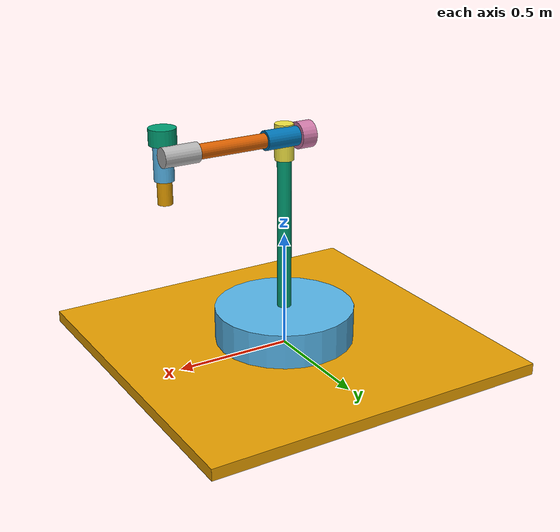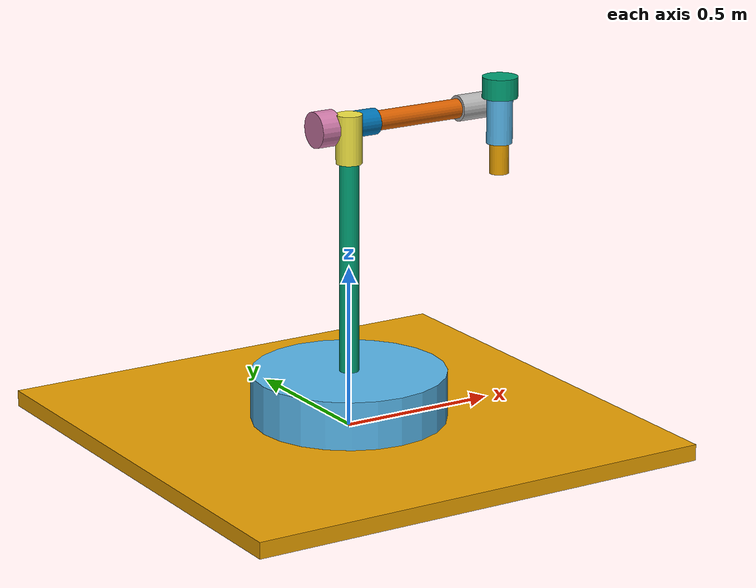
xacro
<?xml version="1.0" ?>
<robot name="robot" xmlns:xacro="http://www.ros.org/wiki/xacro">
<xacro:include filename="$(find robotic_arm)/urdf/materials.xacro" />
<!-- ### XACROS ### -->
<!-- universal -->
<xacro:property name = "default_origin">
    <origin rpy="0 0 0" xyz="0 0 0"/>
</xacro:property>

<!-- arm parts -->
<xacro:macro name = "cylinder_macro" params = "link_name collision_name mass length radius xyz rpy">
<link name = "${link_name}">

    <inertial>
      <mass value="${mass}"/>
      <cylinder_inertia m="${mass}" r="${radius}" h="{length}"/>
      <origin rpy="${rpy}" xyz="${xyz}"/>
      <inertia ixx="${mass * (3 * (radius ** 2) + length ** 2) / 12}" ixy="0" ixz="0" iyy="${mass * (3 * (radius ** 2) + length ** 2) / 12}" iyz="0" izz="${mass * (radius ** 2) / 2}"/>
    </inertial>

    <collision name = "${collision_name}">
    <origin rpy="${rpy}" xyz="${xyz}"/>
      <geometry>
        <cylinder length="${length}" radius="${radius}"/>
      </geometry>
    </collision>

    <visual>
      <origin rpy="${rpy}" xyz="${xyz}"/>
      <geometry>
        <cylinder length="${length}" radius="${radius}"/>
      </geometry>
    </visual>
 </link>
</xacro:macro>

<!-- fixed joint -->
<xacro:macro name = "fixed_joint" params = "joint_name joint_type child_link parent_link xyz xyz_axes " >
<joint name="${joint_name}" type="${joint_type}">
    <origin rpy="0 0 0" xyz="${xyz}"/>
    <child link="${child_link}"/>
    <parent link="${parent_link}"/>
    <axis rpy="0 0 0" xyz="${xyz_axes}"/>
    <limit effort="100" velocity="0" />
</joint>
</xacro:macro>

<!-- revolute + prismatic -->
<xacro:macro name = "movable_joint" params = "joint_name joint_type child_link parent_link xyz xyz_axes l u" >
<joint name="${joint_name}" type="${joint_type}">
    <origin rpy="0 0 0" xyz="${xyz}"/>
    <child link="${child_link}"/>
    <parent link="${parent_link}"/>
    <axis rpy="0 0 0" xyz="${xyz_axes}"/>
    <limit effort="100" velocity="0.5" lower="${l}" upper="${u}"/>
</joint>
</xacro:macro>

<!-- platform -->
<xacro:property name="mass_platform" value="5"/>
<xacro:property name="length_platform" value="1.5"/>
<xacro:property name="width_platform" value="1.5"/>
<xacro:property name="height_platform" value="0.05"/>
<xacro:property name="ixx_platform" value="${mass_platform * (length_platform ** 2 + height_platform ** 2) / 12}"/>
<xacro:property name="iyy_platform" value="${mass_platform * (height_platform ** 2 + width_platform ** 2) / 12}"/>
<xacro:property name="izz_platform" value="${mass_platform * (length_platform ** 2 + width_platform ** 2) / 12}"/>

<!-- ### END OF XACROS ### -->
<!-- PLATFORM -->
<link name = "platform">
    <pose> 0 0 0 0 0 0 </pose>

    <inertial>
        <mass value="${mass_platform}"/>
        <xacro:insert_block name = "default_origin"/>
        <inertia ixx="${ixx_platform}" ixy="0" ixz="0" iyy="${iyy_platform}" iyz="0" izz="${izz_platform}"/>
    </inertial>

    <collision name="platform_collision">
        <xacro:insert_block name = "default_origin"/>
        <geometry>
            <box size="${length_platform} ${width_platform} ${height_platform}"/>
        </geometry>
    </collision>

    <visual>
        <xacro:insert_block name = "default_origin"/>
        <geometry>
            <box size="${length_platform} ${width_platform} ${height_platform}"/>
        </geometry>
    </visual>

</link>

<!-- BASE -->
<xacro:cylinder_macro link_name = "base"
                      collision_name = "base_collision"
                      mass = "3"
                      length = "0.15"
                      radius = "0.3"
                      rpy = "0 0 0"
                      xyz = "0 0 0.05"/>

<!-- PART 1 -->
<xacro:cylinder_macro link_name = "part1"
                      collision_name = "part1_collision"
                      mass = "2"
                      length = "0.8"
                      radius = "0.03"
                      rpy = "0 0 0"
                      xyz = "0 0 0.32"/>

<!-- CYLINDER_LINK1 -->
<xacro:cylinder_macro link_name = "cylinder_link1"
                      collision_name = "cylinder_link1_collision"
                      mass = "0.5"
                      length = "0.15"
                      radius = "0.04"
                      rpy = "0 0 0"
                      xyz = "0 0 0"/>

<!-- CYLINDER_LINK2 -->
<xacro:cylinder_macro link_name = "cylinder_link2"
                      collision_name = "cylinder_link2_collision"
                      mass = "0.5"
                      length = "0.15"
                      radius = "0.04"
                      rpy = "0 1.5708 0"
                      xyz = "0 0 0"/>

<!-- PART 2 -->
<xacro:cylinder_macro link_name = "part2"
                      collision_name = "part2_collision"
                      mass = "1.5"
                      length = "0.5"
                      radius = "0.03"
                      rpy = "0 1.5708 0"
                      xyz = "0 0 0"/>

<!-- CYLINDER_LINK3 -->
<xacro:cylinder_macro link_name = "cylinder_link3"
                      collision_name = "cylinder_link3_collision"
                      mass = "0.5"
                      length = "0.065"
                      radius = "0.055"
                      rpy = "0 1.5708 0"
                      xyz = "0 0 0"/>
<!-- CYLINDER_LINK4 -->
<xacro:cylinder_macro link_name = "cylinder_link4"
                      collision_name = "cylinder_link4_collision"
                      mass = "0.01"
                      length = "0.15"
                      radius = "0.04"
                      rpy = "0 1.5708 0"
                      xyz = "0 0 0"/>

<!-- PART 3 -->
<xacro:cylinder_macro link_name = "part3"
                      collision_name = "part3_collision"
                      mass = "0.2"
                      length = "0.3"
                      radius = "0.03"
                      rpy = "0 3.14 0"
                      xyz = "0 0 0"/>
<!-- CYLINDER_LINK5 -->
<xacro:cylinder_macro link_name = "cylinder_link5"
                      collision_name = "cylinder_link5_collision"
                      mass = "0.01"
                      length = "0.15"
                      radius = "0.04"
                      rpy = "0 0 0"
                      xyz = "0 0 0"/>

<!-- CYLINDER_LINK6 -->
<xacro:cylinder_macro link_name = "cylinder_link6"
                      collision_name = "cylinder_link6_collision"
                      mass = "0.01"
                      length = "0.065"
                      radius = "0.055"
                      rpy = "0 0 0"
                      xyz = "0 0 0"/>

<!-- #### JOINTS #### -->
<!-- Base to platform -->
<xacro:fixed_joint joint_name = "base_to_platform"
                   joint_type = "fixed"
                   child_link = "base"
                   parent_link = "platform"
                   xyz = "0 0 0.05"
                   xyz_axes = "0 0 0"/>

<!-- Part1 to base -->
<xacro:movable_joint joint_name = "part1_to_base"
                   joint_type = "revolute"
                   child_link = "part1"
                   parent_link = "base"
                   xyz = "0 0 0.2"
                   xyz_axes = "0 0 1"
                   l = "-1.5708"
                   u = "1.5708"/>
<!-- Cylinder_link1 to part1 -->
<xacro:fixed_joint joint_name = "clink1_to_part1"
                   joint_type = "fixed"
                   child_link = "cylinder_link1"
                   parent_link = "part1"
                   xyz = "0 0 0.65"
                   xyz_axes = "1 0 0"/>

<!-- Cylinder_link2 to part1 -->
<xacro:fixed_joint joint_name = "clink2_to_part1"
                   joint_type = "fixed"
                   child_link = "cylinder_link2"
                   parent_link = "part1"
                   xyz = "0.04 0.04 0.68"
                   xyz_axes = "1 0 0"/>

<!-- Cylinder_link3 to part1 -->
<xacro:fixed_joint joint_name = "clink3_to_part1"
                   joint_type = "fixed"
                   child_link = "cylinder_link3"
                   parent_link = "part1"
                   xyz = "-0.065 0.04 0.68"
                   xyz_axes = "1 0 0"/>

<!-- Part2 to part1 -->
<xacro:movable_joint joint_name = "part2_to_part1"
                   joint_type = "prismatic"
                   child_link = "part2"
                   parent_link = "part1"
                   xyz = "0.165 0.04 0.68"
                   xyz_axes = "1 0 0"
                   l = "0"
                   u = "0.2"/>
<!-- Cylinder_link4 to part2 -->
<xacro:fixed_joint joint_name = "clink4_to_part2"
                   joint_type = "fixed"
                   child_link = "cylinder_link4"
                   parent_link = "part2"
                   xyz = "0.32 0 0"
                   xyz_axes = "1 0 0"/>

<!-- Cylinder_link5 to part2 -->
<xacro:fixed_joint joint_name = "clink5_to_part2"
                   joint_type = "fixed"
                   child_link = "cylinder_link5"
                   parent_link = "part2"
                   xyz = "0.36 -0.06 -0.035"
                   xyz_axes = "1 0 0"/>

<!-- Part3 to part2 -->
<xacro:movable_joint joint_name = "part3_to_part2"
                   joint_type = "prismatic"
                   child_link = "part3"
                   parent_link = "part2"
                   xyz = "0.36 -0.06 -0.055"
                   xyz_axes = "0 0 1"
                   l = "-0.2"
                   u = "0"/>
<!-- Cylinder_link6 to part2 -->
<xacro:fixed_joint joint_name = "clink6_to_part2"
                   joint_type = "fixed"
                   child_link = "cylinder_link6"
                   parent_link = "part2"
                   xyz = "0.36 -0.06 0.065"
                   xyz_axes = "1 0 0"/>

</robot>
